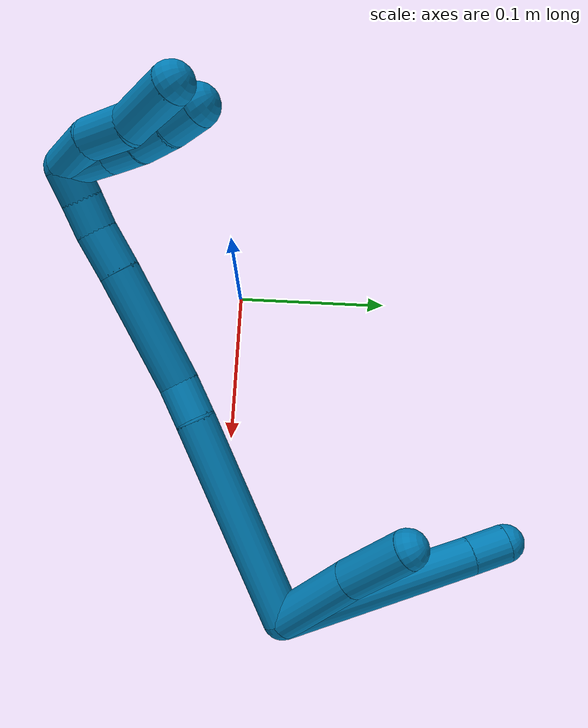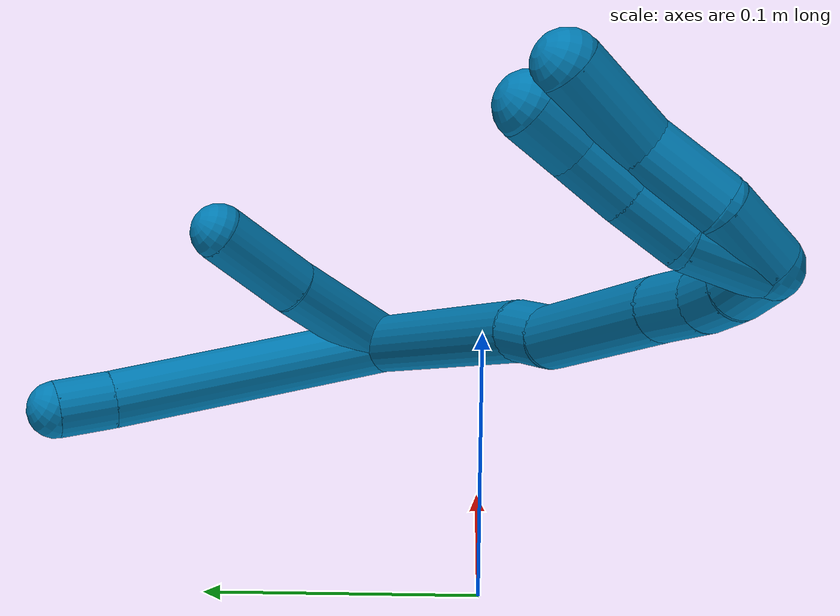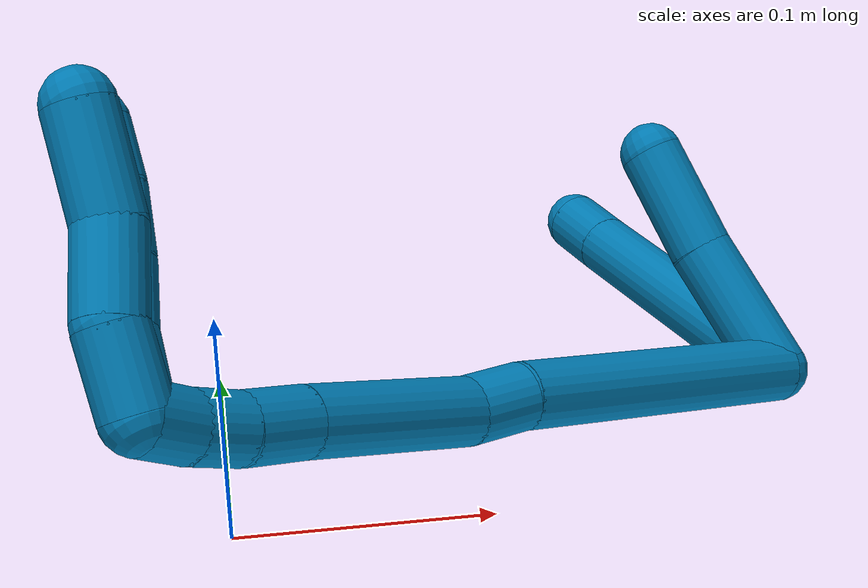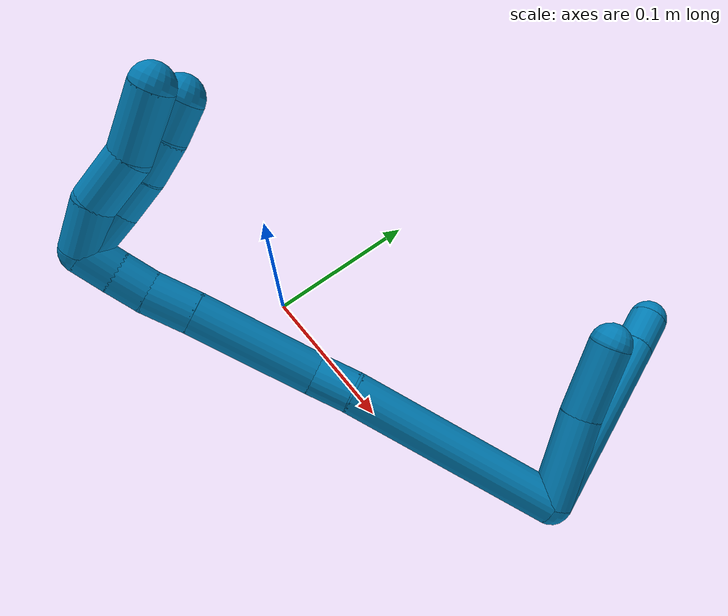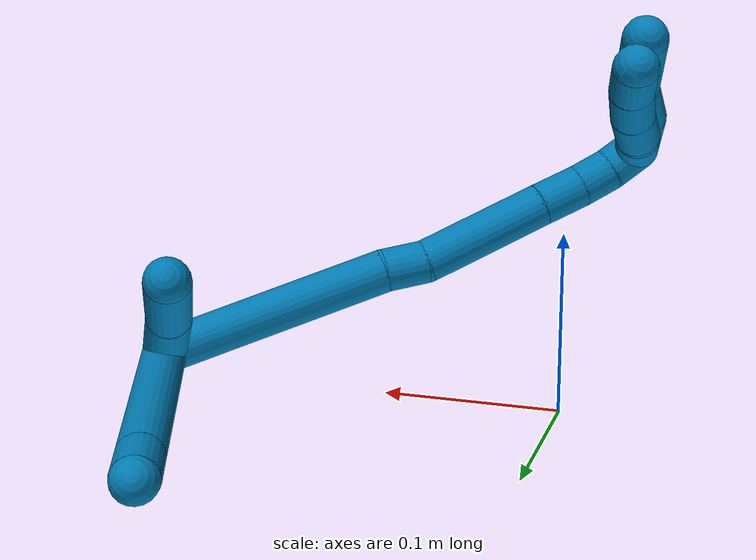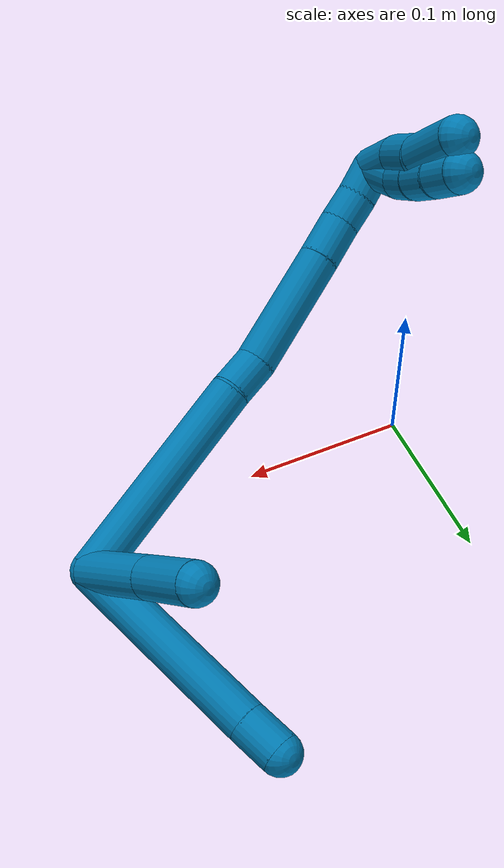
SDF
<sdf version="1.7">
 <world name="default">
  <model name="9">
   <static>0</static>
   <link name="9">
    <collision name="collision-cylinder-e_1_2_8">
     <pose>0.013443 0.03597 0.049427 -0.629099 0.216465 -0.070674</pose>
     <geometry><cylinder><radius>0.0125</radius><length>0.12518</length></cylinder></geometry>
     <surface>
      <friction><ode><mu>1.16</mu><mu2>1.16</mu2><slip1>0</slip1><slip2>0</slip2></ode></friction>
      <contact><ode><kp>1e+06</kp><kd>1</kd><max_vel>0</max_vel><min_depth>0.001</min_depth></ode></contact>
     </surface>
    </collision>
    <visual name="visual-cylinder-e_1_2_8">
     <pose>0.013443 0.03597 0.049427 -0.629099 0.216465 -0.070674</pose>
     <geometry><cylinder><radius>0.0125</radius><length>0.12518</length></cylinder></geometry>
     <material><ambient>0 0.490196 0.709804 1</ambient></material>
    </visual>
    <collision name="collision-cylinder-e_2_8_6">
     <pose>0.029308 0.078787 0.108915 -0.597603 0.196461 -0.060691</pose>
     <geometry><cylinder><radius>0.0125</radius><length>0.02482</length></cylinder></geometry>
     <surface>
      <friction><ode><mu>1.16</mu><mu2>1.16</mu2><slip1>0</slip1><slip2>0</slip2></ode></friction>
      <contact><ode><kp>1e+06</kp><kd>1</kd><max_vel>0</max_vel><min_depth>0.001</min_depth></ode></contact>
     </surface>
    </collision>
    <visual name="visual-cylinder-e_2_8_6">
     <pose>0.029308 0.078787 0.108915 -0.597603 0.196461 -0.060691</pose>
     <geometry><cylinder><radius>0.0125</radius><length>0.02482</length></cylinder></geometry>
     <material><ambient>0 0.490196 0.709804 1</ambient></material>
    </visual>
    <collision name="collision-cylinder-e_1_2_9">
     <pose>-0.00424 -0.000931 0.027582 0.033752 -0.152427 -0.002578</pose>
     <geometry><cylinder><radius>0.0125</radius><length>0.055843</length></cylinder></geometry>
     <surface>
      <friction><ode><mu>1.16</mu><mu2>1.16</mu2><slip1>0</slip1><slip2>0</slip2></ode></friction>
      <contact><ode><kp>1e+06</kp><kd>1</kd><max_vel>0</max_vel><min_depth>0.001</min_depth></ode></contact>
     </surface>
    </collision>
    <visual name="visual-cylinder-e_1_2_9">
     <pose>-0.00424 -0.000931 0.027582 0.033752 -0.152427 -0.002578</pose>
     <geometry><cylinder><radius>0.0125</radius><length>0.055843</length></cylinder></geometry>
     <material><ambient>0 0.490196 0.709804 1</ambient></material>
    </visual>
    <collision name="collision-cylinder-e_2_9_5">
     <pose>-0.010793 -0.004091 0.077008 0.101678 -0.104988 -0.005347</pose>
     <geometry><cylinder><radius>0.0125</radius><length>0.044157</length></cylinder></geometry>
     <surface>
      <friction><ode><mu>1.16</mu><mu2>1.16</mu2><slip1>0</slip1><slip2>0</slip2></ode></friction>
      <contact><ode><kp>1e+06</kp><kd>1</kd><max_vel>0</max_vel><min_depth>0.001</min_depth></ode></contact>
     </surface>
    </collision>
    <visual name="visual-cylinder-e_2_9_5">
     <pose>-0.010793 -0.004091 0.077008 0.101678 -0.104988 -0.005347</pose>
     <geometry><cylinder><radius>0.0125</radius><length>0.044157</length></cylinder></geometry>
     <material><ambient>0 0.490196 0.709804 1</ambient></material>
    </visual>
    <collision name="collision-cylinder-e_1_2_10">
     <pose>-0.06627 0.001212 0.006159 -0.194345 -1.47636 0.176902</pose>
     <geometry><cylinder><radius>0.0125</radius><length>0.133133</length></cylinder></geometry>
     <surface>
      <friction><ode><mu>1.16</mu><mu2>1.16</mu2><slip1>0</slip1><slip2>0</slip2></ode></friction>
      <contact><ode><kp>1e+06</kp><kd>1</kd><max_vel>0</max_vel><min_depth>0.001</min_depth></ode></contact>
     </surface>
    </collision>
    <visual name="visual-cylinder-e_1_2_10">
     <pose>-0.06627 0.001212 0.006159 -0.194345 -1.47636 0.176902</pose>
     <geometry><cylinder><radius>0.0125</radius><length>0.133133</length></cylinder></geometry>
     <material><ambient>0 0.490196 0.709804 1</ambient></material>
    </visual>
    <collision name="collision-cylinder-e_2_10_11">
     <pose>-0.144592 0.004097 0.012337 -1.55946 -1.43294 1.42172</pose>
     <geometry><cylinder><radius>0.0125</radius><length>0.024336</length></cylinder></geometry>
     <surface>
      <friction><ode><mu>1.16</mu><mu2>1.16</mu2><slip1>0</slip1><slip2>0</slip2></ode></friction>
      <contact><ode><kp>1e+06</kp><kd>1</kd><max_vel>0</max_vel><min_depth>0.001</min_depth></ode></contact>
     </surface>
    </collision>
    <visual name="visual-cylinder-e_2_10_11">
     <pose>-0.144592 0.004097 0.012337 -1.55946 -1.43294 1.42172</pose>
     <geometry><cylinder><radius>0.0125</radius><length>0.024336</length></cylinder></geometry>
     <material><ambient>0 0.490196 0.709804 1</ambient></material>
    </visual>
    <collision name="collision-cylinder-e_3_11_12">
     <pose>-0.194058 0.002185 0.015174 0.90431 -1.44955 -0.812407</pose>
     <geometry><cylinder><radius>0.0125</radius><length>0.07538</length></cylinder></geometry>
     <surface>
      <friction><ode><mu>1.16</mu><mu2>1.16</mu2><slip1>0</slip1><slip2>0</slip2></ode></friction>
      <contact><ode><kp>1e+06</kp><kd>1</kd><max_vel>0</max_vel><min_depth>0.001</min_depth></ode></contact>
     </surface>
    </collision>
    <visual name="visual-cylinder-e_3_11_12">
     <pose>-0.194058 0.002185 0.015174 0.90431 -1.44955 -0.812407</pose>
     <geometry><cylinder><radius>0.0125</radius><length>0.07538</length></cylinder></geometry>
     <material><ambient>0 0.490196 0.709804 1</ambient></material>
    </visual>
    <collision name="collision-cylinder-e_4_12_13">
     <pose>-0.244696 -0.002617 0.018526 1.15853 -1.47047 -1.06841</pose>
     <geometry><cylinder><radius>0.0125</radius><length>0.026584</length></cylinder></geometry>
     <surface>
      <friction><ode><mu>1.16</mu><mu2>1.16</mu2><slip1>0</slip1><slip2>0</slip2></ode></friction>
      <contact><ode><kp>1e+06</kp><kd>1</kd><max_vel>0</max_vel><min_depth>0.001</min_depth></ode></contact>
     </surface>
    </collision>
    <visual name="visual-cylinder-e_4_12_13">
     <pose>-0.244696 -0.002617 0.018526 1.15853 -1.47047 -1.06841</pose>
     <geometry><cylinder><radius>0.0125</radius><length>0.026584</length></cylinder></geometry>
     <material><ambient>0 0.490196 0.709804 1</ambient></material>
    </visual>
    <collision name="collision-cylinder-e_5_13_14">
     <pose>-0.26784 -0.005085 0.020666 0.66037 -1.36854 -0.545243</pose>
     <geometry><cylinder><radius>0.0125</radius><length>0.020251</length></cylinder></geometry>
     <surface>
      <friction><ode><mu>1.16</mu><mu2>1.16</mu2><slip1>0</slip1><slip2>0</slip2></ode></friction>
      <contact><ode><kp>1e+06</kp><kd>1</kd><max_vel>0</max_vel><min_depth>0.001</min_depth></ode></contact>
     </surface>
    </collision>
    <visual name="visual-cylinder-e_5_13_14">
     <pose>-0.26784 -0.005085 0.020666 0.66037 -1.36854 -0.545243</pose>
     <geometry><cylinder><radius>0.0125</radius><length>0.020251</length></cylinder></geometry>
     <material><ambient>0 0.490196 0.709804 1</ambient></material>
    </visual>
    <collision name="collision-cylinder-e_6_14_1">
     <pose>-0.287392 -0.008788 0.024365 0.86492 -1.24763 -0.641471</pose>
     <geometry><cylinder><radius>0.0125</radius><length>0.020317</length></cylinder></geometry>
     <surface>
      <friction><ode><mu>1.16</mu><mu2>1.16</mu2><slip1>0</slip1><slip2>0</slip2></ode></friction>
      <contact><ode><kp>1e+06</kp><kd>1</kd><max_vel>0</max_vel><min_depth>0.001</min_depth></ode></contact>
     </surface>
    </collision>
    <visual name="visual-cylinder-e_6_14_1">
     <pose>-0.287392 -0.008788 0.024365 0.86492 -1.24763 -0.641471</pose>
     <geometry><cylinder><radius>0.0125</radius><length>0.020317</length></cylinder></geometry>
     <material><ambient>0 0.490196 0.709804 1</ambient></material>
    </visual>
    <collision name="collision-cylinder-e_1_1_15">
     <pose>-0.297646 -0.015125 0.040382 0.271877 -0.042986 -0.005881</pose>
     <geometry><cylinder><radius>0.0125</radius><length>0.028938</length></cylinder></geometry>
     <surface>
      <friction><ode><mu>1.16</mu><mu2>1.16</mu2><slip1>0</slip1><slip2>0</slip2></ode></friction>
      <contact><ode><kp>1e+06</kp><kd>1</kd><max_vel>0</max_vel><min_depth>0.001</min_depth></ode></contact>
     </surface>
    </collision>
    <visual name="visual-cylinder-e_1_1_15">
     <pose>-0.297646 -0.015125 0.040382 0.271877 -0.042986 -0.005881</pose>
     <geometry><cylinder><radius>0.0125</radius><length>0.028938</length></cylinder></geometry>
     <material><ambient>0 0.490196 0.709804 1</ambient></material>
    </visual>
    <collision name="collision-cylinder-e_2_15_16">
     <pose>-0.293578 -0.022894 0.069553 0.24965 0.289709 0.036604</pose>
     <geometry><cylinder><radius>0.0125</radius><length>0.032835</length></cylinder></geometry>
     <surface>
      <friction><ode><mu>1.16</mu><mu2>1.16</mu2><slip1>0</slip1><slip2>0</slip2></ode></friction>
      <contact><ode><kp>1e+06</kp><kd>1</kd><max_vel>0</max_vel><min_depth>0.001</min_depth></ode></contact>
     </surface>
    </collision>
    <visual name="visual-cylinder-e_2_15_16">
     <pose>-0.293578 -0.022894 0.069553 0.24965 0.289709 0.036604</pose>
     <geometry><cylinder><radius>0.0125</radius><length>0.032835</length></cylinder></geometry>
     <material><ambient>0 0.490196 0.709804 1</ambient></material>
    </visual>
    <collision name="collision-cylinder-e_3_16_4">
     <pose>-0.289133 -0.032174 0.103134 0.286052 -0.012836 -0.001849</pose>
     <geometry><cylinder><radius>0.0125</radius><length>0.038227</length></cylinder></geometry>
     <surface>
      <friction><ode><mu>1.16</mu><mu2>1.16</mu2><slip1>0</slip1><slip2>0</slip2></ode></friction>
      <contact><ode><kp>1e+06</kp><kd>1</kd><max_vel>0</max_vel><min_depth>0.001</min_depth></ode></contact>
     </surface>
    </collision>
    <visual name="visual-cylinder-e_3_16_4">
     <pose>-0.289133 -0.032174 0.103134 0.286052 -0.012836 -0.001849</pose>
     <geometry><cylinder><radius>0.0125</radius><length>0.038227</length></cylinder></geometry>
     <material><ambient>0 0.490196 0.709804 1</ambient></material>
    </visual>
    <collision name="collision-cylinder-e_1_1_17">
     <pose>-0.293031 -0.010003 0.04094 -0.085408 0.268114 -0.011526</pose>
     <geometry><cylinder><radius>0.0125</radius><length>0.030147</length></cylinder></geometry>
     <surface>
      <friction><ode><mu>1.16</mu><mu2>1.16</mu2><slip1>0</slip1><slip2>0</slip2></ode></friction>
      <contact><ode><kp>1e+06</kp><kd>1</kd><max_vel>0</max_vel><min_depth>0.001</min_depth></ode></contact>
     </surface>
    </collision>
    <visual name="visual-cylinder-e_1_1_17">
     <pose>-0.293031 -0.010003 0.04094 -0.085408 0.268114 -0.011526</pose>
     <geometry><cylinder><radius>0.0125</radius><length>0.030147</length></cylinder></geometry>
     <material><ambient>0 0.490196 0.709804 1</ambient></material>
    </visual>
    <collision name="collision-cylinder-e_2_17_18">
     <pose>-0.285687 -0.011498 0.066866 0.234541 0.277449 0.032895</pose>
     <geometry><cylinder><radius>0.0125</radius><length>0.024469</length></cylinder></geometry>
     <surface>
      <friction><ode><mu>1.16</mu><mu2>1.16</mu2><slip1>0</slip1><slip2>0</slip2></ode></friction>
      <contact><ode><kp>1e+06</kp><kd>1</kd><max_vel>0</max_vel><min_depth>0.001</min_depth></ode></contact>
     </surface>
    </collision>
    <visual name="visual-cylinder-e_2_17_18">
     <pose>-0.285687 -0.011498 0.066866 0.234541 0.277449 0.032895</pose>
     <geometry><cylinder><radius>0.0125</radius><length>0.024469</length></cylinder></geometry>
     <material><ambient>0 0.490196 0.709804 1</ambient></material>
    </visual>
    <collision name="collision-cylinder-e_3_18_19">
     <pose>-0.280329 -0.016972 0.089769 0.234723 0.168756 0.019944</pose>
     <geometry><cylinder><radius>0.0125</radius><length>0.023904</length></cylinder></geometry>
     <surface>
      <friction><ode><mu>1.16</mu><mu2>1.16</mu2><slip1>0</slip1><slip2>0</slip2></ode></friction>
      <contact><ode><kp>1e+06</kp><kd>1</kd><max_vel>0</max_vel><min_depth>0.001</min_depth></ode></contact>
     </surface>
    </collision>
    <visual name="visual-cylinder-e_3_18_19">
     <pose>-0.280329 -0.016972 0.089769 0.234723 0.168756 0.019944</pose>
     <geometry><cylinder><radius>0.0125</radius><length>0.023904</length></cylinder></geometry>
     <material><ambient>0 0.490196 0.709804 1</ambient></material>
    </visual>
    <collision name="collision-cylinder-e_4_19_3">
     <pose>-0.277693 -0.02163 0.111777 0.179793 0.058523 0.005277</pose>
     <geometry><cylinder><radius>0.0125</radius><length>0.021481</length></cylinder></geometry>
     <surface>
      <friction><ode><mu>1.16</mu><mu2>1.16</mu2><slip1>0</slip1><slip2>0</slip2></ode></friction>
      <contact><ode><kp>1e+06</kp><kd>1</kd><max_vel>0</max_vel><min_depth>0.001</min_depth></ode></contact>
     </surface>
    </collision>
    <visual name="visual-cylinder-e_4_19_3">
     <pose>-0.277693 -0.02163 0.111777 0.179793 0.058523 0.005277</pose>
     <geometry><cylinder><radius>0.0125</radius><length>0.021481</length></cylinder></geometry>
     <material><ambient>0 0.490196 0.709804 1</ambient></material>
    </visual>
    <collision name="collision-sphere-3">
     <pose>-0.277065 -0.023547 0.122327 0 -0 0</pose>
     <geometry><sphere><radius>0.0125</radius></sphere></geometry>
     <surface>
      <friction><ode><mu>1.16</mu><mu2>1.16</mu2><slip1>0</slip1><slip2>0</slip2></ode></friction>
      <contact><ode><kp>1e+06</kp><kd>1</kd><max_vel>0</max_vel><min_depth>0.001</min_depth></ode></contact>
     </surface>
    </collision>
    <visual name="visual-sphere-3">
     <pose>-0.277065 -0.023547 0.122327 0 -0 0</pose>
     <geometry><sphere><radius>0.0125</radius></sphere></geometry>
     <material><ambient>0 0.490196 0.709804 1</ambient></material>
    </visual>
    <collision name="collision-sphere-19">
     <pose>-0.278321 -0.019713 0.101228 0 -0 0</pose>
     <geometry><sphere><radius>0.0125</radius></sphere></geometry>
     <surface>
      <friction><ode><mu>1.16</mu><mu2>1.16</mu2><slip1>0</slip1><slip2>0</slip2></ode></friction>
      <contact><ode><kp>1e+06</kp><kd>1</kd><max_vel>0</max_vel><min_depth>0.001</min_depth></ode></contact>
     </surface>
    </collision>
    <visual name="visual-sphere-19">
     <pose>-0.278321 -0.019713 0.101228 0 -0 0</pose>
     <geometry><sphere><radius>0.0125</radius></sphere></geometry>
     <material><ambient>0 0.490196 0.709804 1</ambient></material>
    </visual>
    <collision name="collision-sphere-10">
     <pose>-0.13254 0.002425 0.012318 0 -0 0</pose>
     <geometry><sphere><radius>0.0125</radius></sphere></geometry>
     <surface>
      <friction><ode><mu>1.16</mu><mu2>1.16</mu2><slip1>0</slip1><slip2>0</slip2></ode></friction>
      <contact><ode><kp>1e+06</kp><kd>1</kd><max_vel>0</max_vel><min_depth>0.001</min_depth></ode></contact>
     </surface>
    </collision>
    <visual name="visual-sphere-10">
     <pose>-0.13254 0.002425 0.012318 0 -0 0</pose>
     <geometry><sphere><radius>0.0125</radius></sphere></geometry>
     <material><ambient>0 0.490196 0.709804 1</ambient></material>
    </visual>
    <collision name="collision-sphere-5">
     <pose>-0.013107 -0.00632 0.098851 0 -0 0</pose>
     <geometry><sphere><radius>0.0125</radius></sphere></geometry>
     <surface>
      <friction><ode><mu>1.16</mu><mu2>1.16</mu2><slip1>0</slip1><slip2>0</slip2></ode></friction>
      <contact><ode><kp>1e+06</kp><kd>1</kd><max_vel>0</max_vel><min_depth>0.001</min_depth></ode></contact>
     </surface>
    </collision>
    <visual name="visual-sphere-5">
     <pose>-0.013107 -0.00632 0.098851 0 -0 0</pose>
     <geometry><sphere><radius>0.0125</radius></sphere></geometry>
     <material><ambient>0 0.490196 0.709804 1</ambient></material>
    </visual>
    <collision name="collision-sphere-6">
     <pose>0.031731 0.085636 0.118977 0 -0 0</pose>
     <geometry><sphere><radius>0.0125</radius></sphere></geometry>
     <surface>
      <friction><ode><mu>1.16</mu><mu2>1.16</mu2><slip1>0</slip1><slip2>0</slip2></ode></friction>
      <contact><ode><kp>1e+06</kp><kd>1</kd><max_vel>0</max_vel><min_depth>0.001</min_depth></ode></contact>
     </surface>
    </collision>
    <visual name="visual-sphere-6">
     <pose>0.031731 0.085636 0.118977 0 -0 0</pose>
     <geometry><sphere><radius>0.0125</radius></sphere></geometry>
     <material><ambient>0 0.490196 0.709804 1</ambient></material>
    </visual>
    <collision name="collision-sphere-9">
     <pose>-0.008479 -0.001863 0.055164 0 -0 0</pose>
     <geometry><sphere><radius>0.0125</radius></sphere></geometry>
     <surface>
      <friction><ode><mu>1.16</mu><mu2>1.16</mu2><slip1>0</slip1><slip2>0</slip2></ode></friction>
      <contact><ode><kp>1e+06</kp><kd>1</kd><max_vel>0</max_vel><min_depth>0.001</min_depth></ode></contact>
     </surface>
    </collision>
    <visual name="visual-sphere-9">
     <pose>-0.008479 -0.001863 0.055164 0 -0 0</pose>
     <geometry><sphere><radius>0.0125</radius></sphere></geometry>
     <material><ambient>0 0.490196 0.709804 1</ambient></material>
    </visual>
    <collision name="collision-sphere-2">
     <geometry><sphere><radius>0.0125</radius></sphere></geometry>
     <surface>
      <friction><ode><mu>1.16</mu><mu2>1.16</mu2><slip1>0</slip1><slip2>0</slip2></ode></friction>
      <contact><ode><kp>1e+06</kp><kd>1</kd><max_vel>0</max_vel><min_depth>0.001</min_depth></ode></contact>
     </surface>
    </collision>
    <visual name="visual-sphere-2">
     <geometry><sphere><radius>0.0125</radius></sphere></geometry>
     <material><ambient>0 0.490196 0.709804 1</ambient></material>
    </visual>
    <collision name="collision-sphere-8">
     <pose>0.026886 0.071939 0.098853 0 -0 0</pose>
     <geometry><sphere><radius>0.0125</radius></sphere></geometry>
     <surface>
      <friction><ode><mu>1.16</mu><mu2>1.16</mu2><slip1>0</slip1><slip2>0</slip2></ode></friction>
      <contact><ode><kp>1e+06</kp><kd>1</kd><max_vel>0</max_vel><min_depth>0.001</min_depth></ode></contact>
     </surface>
    </collision>
    <visual name="visual-sphere-8">
     <pose>0.026886 0.071939 0.098853 0 -0 0</pose>
     <geometry><sphere><radius>0.0125</radius></sphere></geometry>
     <material><ambient>0 0.490196 0.709804 1</ambient></material>
    </visual>
    <collision name="collision-sphere-11">
     <pose>-0.156645 0.005768 0.012356 0 -0 0</pose>
     <geometry><sphere><radius>0.0125</radius></sphere></geometry>
     <surface>
      <friction><ode><mu>1.16</mu><mu2>1.16</mu2><slip1>0</slip1><slip2>0</slip2></ode></friction>
      <contact><ode><kp>1e+06</kp><kd>1</kd><max_vel>0</max_vel><min_depth>0.001</min_depth></ode></contact>
     </surface>
    </collision>
    <visual name="visual-sphere-11">
     <pose>-0.156645 0.005768 0.012356 0 -0 0</pose>
     <geometry><sphere><radius>0.0125</radius></sphere></geometry>
     <material><ambient>0 0.490196 0.709804 1</ambient></material>
    </visual>
    <collision name="collision-sphere-12">
     <pose>-0.231471 -0.001398 0.017993 0 -0 0</pose>
     <geometry><sphere><radius>0.0125</radius></sphere></geometry>
     <surface>
      <friction><ode><mu>1.16</mu><mu2>1.16</mu2><slip1>0</slip1><slip2>0</slip2></ode></friction>
      <contact><ode><kp>1e+06</kp><kd>1</kd><max_vel>0</max_vel><min_depth>0.001</min_depth></ode></contact>
     </surface>
    </collision>
    <visual name="visual-sphere-12">
     <pose>-0.231471 -0.001398 0.017993 0 -0 0</pose>
     <geometry><sphere><radius>0.0125</radius></sphere></geometry>
     <material><ambient>0 0.490196 0.709804 1</ambient></material>
    </visual>
    <collision name="collision-sphere-13">
     <pose>-0.257921 -0.003837 0.01906 0 -0 0</pose>
     <geometry><sphere><radius>0.0125</radius></sphere></geometry>
     <surface>
      <friction><ode><mu>1.16</mu><mu2>1.16</mu2><slip1>0</slip1><slip2>0</slip2></ode></friction>
      <contact><ode><kp>1e+06</kp><kd>1</kd><max_vel>0</max_vel><min_depth>0.001</min_depth></ode></contact>
     </surface>
    </collision>
    <visual name="visual-sphere-13">
     <pose>-0.257921 -0.003837 0.01906 0 -0 0</pose>
     <geometry><sphere><radius>0.0125</radius></sphere></geometry>
     <material><ambient>0 0.490196 0.709804 1</ambient></material>
    </visual>
    <collision name="collision-sphere-14">
     <pose>-0.277759 -0.006333 0.022272 0 -0 0</pose>
     <geometry><sphere><radius>0.0125</radius></sphere></geometry>
     <surface>
      <friction><ode><mu>1.16</mu><mu2>1.16</mu2><slip1>0</slip1><slip2>0</slip2></ode></friction>
      <contact><ode><kp>1e+06</kp><kd>1</kd><max_vel>0</max_vel><min_depth>0.001</min_depth></ode></contact>
     </surface>
    </collision>
    <visual name="visual-sphere-14">
     <pose>-0.277759 -0.006333 0.022272 0 -0 0</pose>
     <geometry><sphere><radius>0.0125</radius></sphere></geometry>
     <material><ambient>0 0.490196 0.709804 1</ambient></material>
    </visual>
    <collision name="collision-sphere-1">
     <pose>-0.297024 -0.011243 0.026458 0 -0 0</pose>
     <geometry><sphere><radius>0.0125</radius></sphere></geometry>
     <surface>
      <friction><ode><mu>1.16</mu><mu2>1.16</mu2><slip1>0</slip1><slip2>0</slip2></ode></friction>
      <contact><ode><kp>1e+06</kp><kd>1</kd><max_vel>0</max_vel><min_depth>0.001</min_depth></ode></contact>
     </surface>
    </collision>
    <visual name="visual-sphere-1">
     <pose>-0.297024 -0.011243 0.026458 0 -0 0</pose>
     <geometry><sphere><radius>0.0125</radius></sphere></geometry>
     <material><ambient>0 0.490196 0.709804 1</ambient></material>
    </visual>
    <collision name="collision-sphere-18">
     <pose>-0.282336 -0.014232 0.07831 0 -0 0</pose>
     <geometry><sphere><radius>0.0125</radius></sphere></geometry>
     <surface>
      <friction><ode><mu>1.16</mu><mu2>1.16</mu2><slip1>0</slip1><slip2>0</slip2></ode></friction>
      <contact><ode><kp>1e+06</kp><kd>1</kd><max_vel>0</max_vel><min_depth>0.001</min_depth></ode></contact>
     </surface>
    </collision>
    <visual name="visual-sphere-18">
     <pose>-0.282336 -0.014232 0.07831 0 -0 0</pose>
     <geometry><sphere><radius>0.0125</radius></sphere></geometry>
     <material><ambient>0 0.490196 0.709804 1</ambient></material>
    </visual>
    <collision name="collision-sphere-15">
     <pose>-0.298268 -0.019007 0.054307 0 -0 0</pose>
     <geometry><sphere><radius>0.0125</radius></sphere></geometry>
     <surface>
      <friction><ode><mu>1.16</mu><mu2>1.16</mu2><slip1>0</slip1><slip2>0</slip2></ode></friction>
      <contact><ode><kp>1e+06</kp><kd>1</kd><max_vel>0</max_vel><min_depth>0.001</min_depth></ode></contact>
     </surface>
    </collision>
    <visual name="visual-sphere-15">
     <pose>-0.298268 -0.019007 0.054307 0 -0 0</pose>
     <geometry><sphere><radius>0.0125</radius></sphere></geometry>
     <material><ambient>0 0.490196 0.709804 1</ambient></material>
    </visual>
    <collision name="collision-sphere-16">
     <pose>-0.288888 -0.026781 0.084798 0 -0 0</pose>
     <geometry><sphere><radius>0.0125</radius></sphere></geometry>
     <surface>
      <friction><ode><mu>1.16</mu><mu2>1.16</mu2><slip1>0</slip1><slip2>0</slip2></ode></friction>
      <contact><ode><kp>1e+06</kp><kd>1</kd><max_vel>0</max_vel><min_depth>0.001</min_depth></ode></contact>
     </surface>
    </collision>
    <visual name="visual-sphere-16">
     <pose>-0.288888 -0.026781 0.084798 0 -0 0</pose>
     <geometry><sphere><radius>0.0125</radius></sphere></geometry>
     <material><ambient>0 0.490196 0.709804 1</ambient></material>
    </visual>
    <collision name="collision-sphere-4">
     <pose>-0.289378 -0.037567 0.121469 0 -0 0</pose>
     <geometry><sphere><radius>0.0125</radius></sphere></geometry>
     <surface>
      <friction><ode><mu>1.16</mu><mu2>1.16</mu2><slip1>0</slip1><slip2>0</slip2></ode></friction>
      <contact><ode><kp>1e+06</kp><kd>1</kd><max_vel>0</max_vel><min_depth>0.001</min_depth></ode></contact>
     </surface>
    </collision>
    <visual name="visual-sphere-4">
     <pose>-0.289378 -0.037567 0.121469 0 -0 0</pose>
     <geometry><sphere><radius>0.0125</radius></sphere></geometry>
     <material><ambient>0 0.490196 0.709804 1</ambient></material>
    </visual>
    <collision name="collision-sphere-17">
     <pose>-0.289038 -0.008763 0.055421 0 -0 0</pose>
     <geometry><sphere><radius>0.0125</radius></sphere></geometry>
     <surface>
      <friction><ode><mu>1.16</mu><mu2>1.16</mu2><slip1>0</slip1><slip2>0</slip2></ode></friction>
      <contact><ode><kp>1e+06</kp><kd>1</kd><max_vel>0</max_vel><min_depth>0.001</min_depth></ode></contact>
     </surface>
    </collision>
    <visual name="visual-sphere-17">
     <pose>-0.289038 -0.008763 0.055421 0 -0 0</pose>
     <geometry><sphere><radius>0.0125</radius></sphere></geometry>
     <material><ambient>0 0.490196 0.709804 1</ambient></material>
    </visual>
    <inertial>
     <pose>-0.134448 0.003237 0.043084 0 -0 0</pose>
     <mass>0.75</mass>
     <inertia>
      <ixx>0.000205</ixx>
      <ixy>0</ixy>
      <ixz>0</ixz>
      <iyy>0.000425</iyy>
      <iyz>0</iyz>
      <izz>0.000153</izz>
     </inertia>
    </inertial>
   </link>
   <pose>0.217959 0.041506 0.025529 -0.980683 0.286806 0.568999</pose>
  </model>
 </world>
</sdf>
